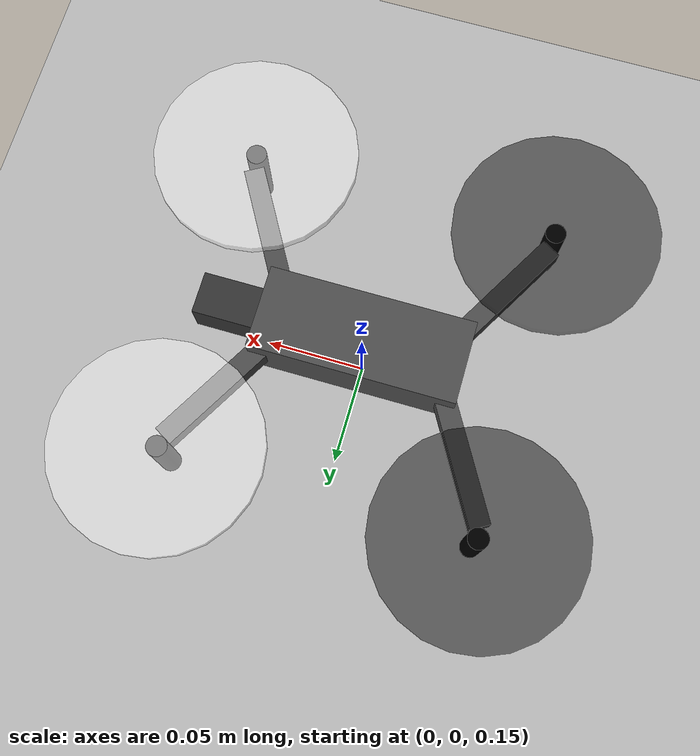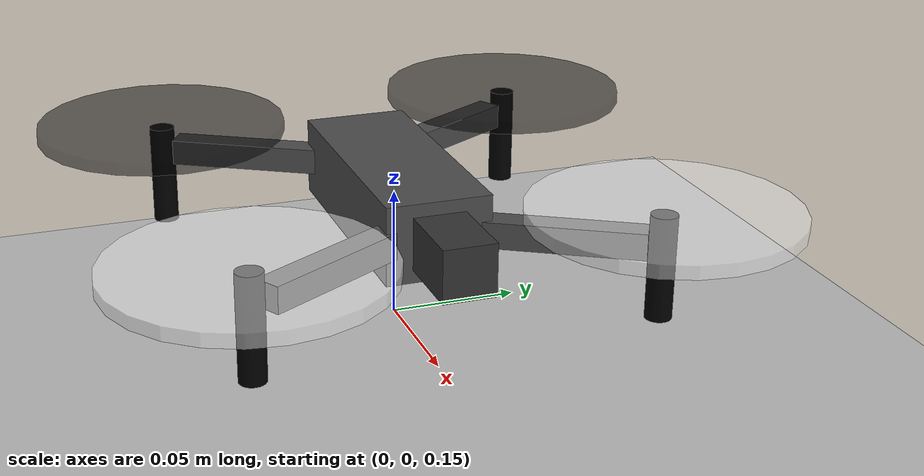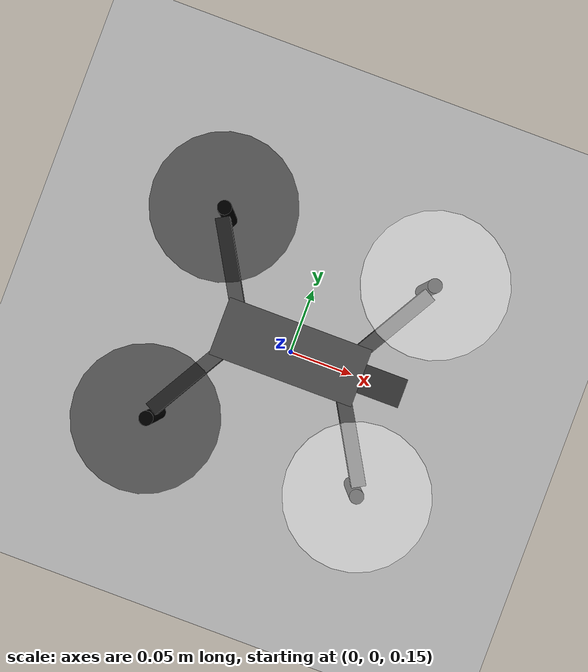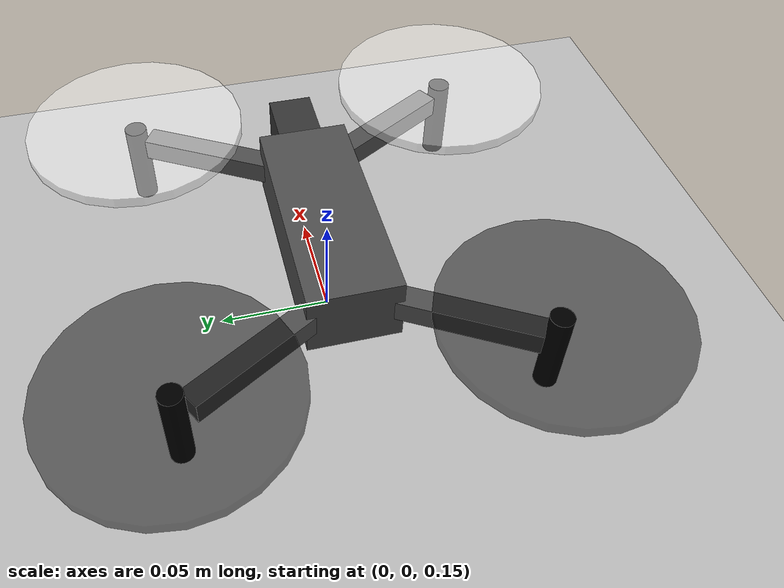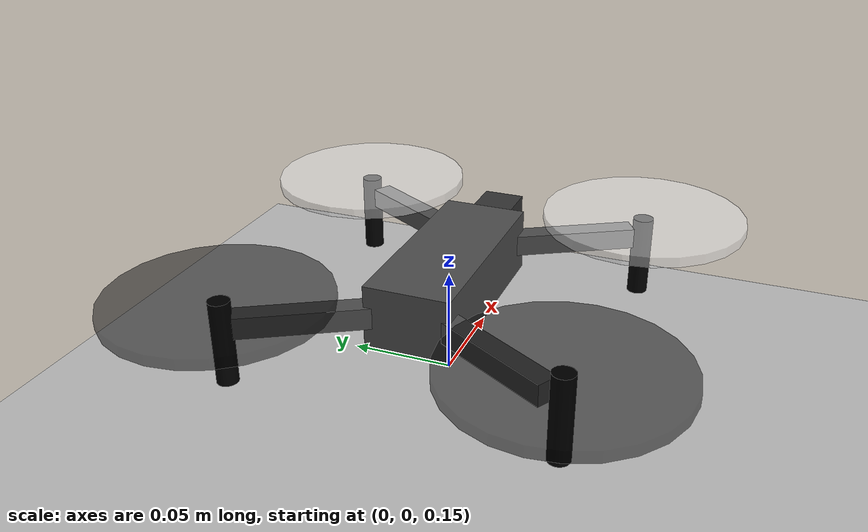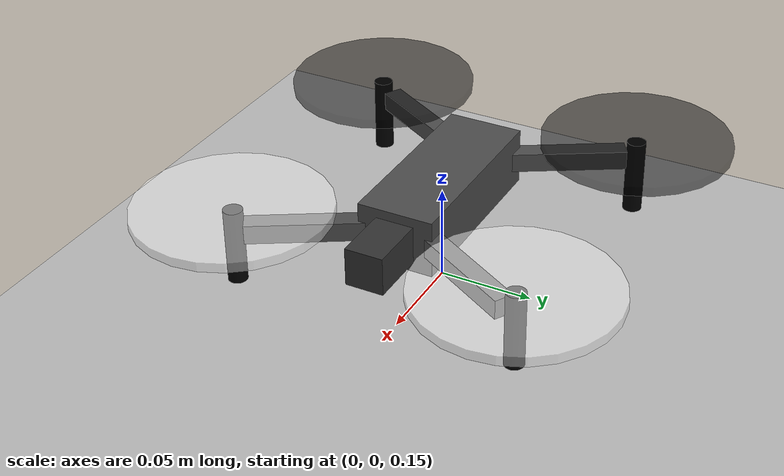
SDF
<?xml version="1.0"?>
<sdf version="1.5">
  <world name="default">

    <!-- A global light source -->
    <scene>
      <ambient>0.5 0.5 0.5 1.0</ambient>
      <shadows>true</shadows>
    </scene>

    <include>
      <uri>model://sun</uri>
    </include>

    <!-- A ground plane -->
    <include>
      <uri>model://ground_plane</uri>
    </include>

    <!-- Coordinates -->
    <spherical_coordinates>
      <surface_model>EARTH_WGS84</surface_model>
      <latitude_deg>0</latitude_deg>
      <longitude_deg>0</longitude_deg>
      <elevation>0</elevation>
      <heading_deg>0</heading_deg>
    </spherical_coordinates>

    <!-- Camera -->
    <gui fullscreen='0'>
      <camera name='user_camera'>
        <pose>7.8971 -5.86361 6.86576 0 0.507643 2.3202</pose>
        <view_controller>orbit</view_controller>
        <projection_type>perspective</projection_type>
      </camera>
    </gui>

    <!-- Floor -->
    <include>
      <name>floor</name>
      <uri>model://floor</uri>
      <pose>0 0 0.05 0 0 0</pose>
    </include>

    <!-- UAV -->
    <include>
      <name>drone</name>
      <uri>model://drone</uri>
      <pose>0 0 0.2 0 0 0</pose>
    </include>

  </world>
</sdf>

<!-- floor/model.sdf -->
<sdf version="1.5">

  <model name='floor'>
    <static>true</static>
    <link name='link'>
      <collision name='collisionsuelo'>
        <geometry>
          <box>
            <size>10 10 0.1</size>
          </box>
        </geometry>

        <surface>
          <friction>
            <ode>
              <mu>100.0</mu>
              <mu2>50.0</mu2>
              <slip1>0.0</slip1>
              <slip2>0.0</slip2>
            </ode>
          </friction>
        </surface>

      </collision>

      <visual name='visualsuelo'>
        <geometry>
          <box>
            <size>10 10 0.1</size>
          </box>
        </geometry>
        <material>
          <script>

            <uri>model://DC/floor/scripts</uri>
            <uri>model://DC/floor/materials</uri>
            <name>floorMat/Diffuse</name>
          </script>
        </material>
      </visual>
      <self_collide>0</self_collide>
      <kinematic>0</kinematic>
      <gravity>1</gravity>
    </link>
  </model>

</sdf>

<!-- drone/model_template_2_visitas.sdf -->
<sdf version='1.5'>
    <model name='drone_%i'>
        <name>abejorro</name>
        <pose>%f %f %f 0 0 0</pose>
        <plugin name='DroneControl' filename='libDroneControl.so'>
            <id>%i</id>
        </plugin>
        <static>false</static>
        <link name='dronelink'> <!-- Rotores en distribucion cuadrada situados a 25 cms del centro de gravedad -->
            <visual name='fuselaje'>
                <pose>0 0 0 0 0 0</pose>
                <geometry>
                    <box>
                        <size>0.10 0.04 0.03</size>
                    </box>
                </geometry>
                <material>
                    <ambient>0.3 0.3 0.3 1</ambient>
                    <diffuse>0.3 0.3 0.3 1</diffuse>
                </material>
            </visual>
            <collision name='fuselaje'>
                <pose>0 0 0 0 0 0</pose>
                <geometry>
                    <box>
                        <size>0.10 0.04 0.03</size>
                    </box>
                </geometry>
                <surface>
                    <friction>
                        <ode>
                            <mu>0.1</mu>
                            <mu2>0.2</mu2>
                            <slip1>1.0</slip1>
                            <slip2>1.0</slip2>
                        </ode>
                    </friction>
                </surface>
            </collision>
            <visual name='camara'>
                <pose>0.065 0 0 0 0 0</pose>
                <geometry>
                    <box>
                        <size>0.03 0.02 0.02</size>
                    </box>
                </geometry>
                <material>
                    <ambient>0.2 0.2 0.2 1</ambient>
                    <diffuse>0.2 0.2 0.2 1</diffuse>
                </material>
            </visual>
            <collision name='camara'>
                <pose>0.065 0 0 0 0 0</pose>
                <geometry>
                    <box>
                        <size>0.03 0.02 0.02</size>
                    </box>
                </geometry>
                <surface>
                    <friction>
                        <ode>
                            <mu>0.1</mu>
                            <mu2>0.2</mu2>
                            <slip1>1.0</slip1>
                            <slip2>1.0</slip2>
                        </ode>
                    </friction>
                </surface>
            </collision>
            <sensor name='view_camera' type='camera'>
                <plugin name='camera_controller_2' filename='libgazebo_ros_camera.so'>
                    <alwaysOn>true</alwaysOn>
                    <updateRate>0.0</updateRate>
                    <cameraName>view_camera</cameraName>
                    <robotNamespace>drone/%i</robotNamespace>
                </plugin>
                <pose>-0.3 0 0.2 0 0.3 0</pose>
                <camera name='view_camera'>
                    <horizontal_fov>1.57</horizontal_fov>
                    <image>
                        <width>480</width>
                        <height>360</height>
                    </image>
                    <clip>
                        <near>0.01</near>
                        <far>30</far>
                    </clip>
                </camera>
                <always_on>1</always_on>
                <update_rate>24</update_rate>
                <visualize>0</visualize>
            </sensor>
            <sensor name='onboard_camera_sensor' type='camera'>
                <plugin name='camera_controller' filename='libgazebo_ros_camera.so'>
                    <alwaysOn>true</alwaysOn>
                    <updateRate>0.0</updateRate>
                    <cameraName>onboard_camera</cameraName>
                    <robotNamespace>drone/%i</robotNamespace>
                </plugin>
                <pose>0.08 0 0 0 0</pose>
                <camera name='onboard_camera_'>
                    <horizontal_fov>1.57</horizontal_fov>
                    <image>
                        <width>320</width>
                        <height>240</height>
                    </image>
                    <clip>
                        <near>0.01</near>
                        <far>20</far>
                    </clip>
                </camera>
                <always_on>1</always_on>
                <update_rate>10</update_rate>
                <visualize>0</visualize>
            </sensor>
            <visual name='brazo_NE'>
                <pose>0.0550 -0.0346 0 0 0 -1.0472</pose>
                <geometry>
                    <box>
                        <size>0.08 .01 .01</size>
                    </box>
                </geometry>
                <material>
                    <ambient>0.3 0.3 0.3 1</ambient>
                    <diffuse>0.3 0.3 0.3 1</diffuse>
                </material>
            </visual>
            <collision name='brazo_NE'>
                <pose>0.0550 -0.0346 0 0 0 -1.0472</pose>
                <geometry>
                    <box>
                        <size>0.08 .01 .01</size>
                    </box>
                </geometry>
                <surface>
                    <friction>
                        <ode>
                            <mu>0.1</mu>
                            <mu2>0.2</mu2>
                            <slip1>1.0</slip1>
                            <slip2>1.0</slip2>
                        </ode>
                    </friction>
                </surface>
            </collision>
            <visual name='motor_NE'>
                <pose>0.0750 -0.0750 -0.01 0 0 0</pose>
                <geometry>
                    <cylinder>
                        <radius>.005</radius>
                        <length>.04</length>
                    </cylinder>
                </geometry>
                <material>
                    <ambient>0 0 0 1</ambient> <!--color Red Green Blue Alpha [0-1] -->
                    <diffuse>0 0 0 1</diffuse>
                </material>
            </visual>
            <collision name='motor_NE'>
                <pose>0.0750 -0.0750 -0.01 0 0 0</pose>
                <geometry>
                    <cylinder>
                        <radius>.005</radius>
                        <length>.04</length>
                    </cylinder>
                </geometry>
                <surface>
                    <friction>
                        <ode>
                            <mu>100.0</mu>
                            <mu2>50.0</mu2>
                            <slip1>0.0</slip1>
                            <slip2>0.0</slip2>
                        </ode>
                    </friction>
                </surface>
            </collision>
            <visual name='rotor_NE'>
                <pose>0.0750 -0.0750 0.01 0 0 0</pose>
                <geometry>
                    <cylinder>
                        <radius>0.05</radius>
                        <length>.005</length>
                    </cylinder>
                </geometry>
                <material>
                    <ambient>1 1 1 0.5</ambient> <!--color Red Green Blue Alpha [0-1] -->
                    <diffuse>1 1 1 0.5</diffuse>
                </material>
            </visual>
            <collision name='rotor_NE'>
                <pose>0.0750 -0.0750 0.01 0 0 0</pose>
                <geometry>
                    <cylinder>
                        <radius>0.05</radius>
                        <length>.005</length>
                    </cylinder>
                </geometry>
                <surface>
                    <friction>
                        <ode>
                            <mu>0.1</mu>
                            <mu2>0.2</mu2>
                            <slip1>1.0</slip1>
                            <slip2>1.0</slip2>
                        </ode>
                    </friction>
                </surface>
            </collision>
            <visual name='brazo_NW'>
                <pose>0.0550 0.0346 0 0 0 1.0472</pose>
                <geometry>
                    <box>
                        <size>0.08 .01 .01</size>
                    </box>
                </geometry>
                <material>
                    <ambient>0.3 0.3 0.3 1</ambient>
                    <diffuse>0.3 0.3 0.3 1</diffuse>
                </material>
            </visual>
            <collision name='brazo_NW'>
                <pose>0.0550 0.0346 0 0 0 1.0472</pose>
                <geometry>
                    <box>
                        <size>0.08 .01 .01</size>
                    </box>
                </geometry>
                <surface>
                    <friction>
                        <ode>
                            <mu>0.1</mu>
                            <mu2>0.2</mu2>
                            <slip1>1.0</slip1>
                            <slip2>1.0</slip2>
                        </ode>
                    </friction>
                </surface>
            </collision>
            <visual name='motor_NW'>
                <pose>0.0750 0.0750 -0.01 0 0 0</pose>
                <geometry>
                    <cylinder>
                        <radius>.005</radius>
                        <length>.04</length>
                    </cylinder>
                </geometry>
                <material>
                    <ambient>0 0 0 1</ambient> <!--color Red Green Blue Alpha [0-1] -->
                    <diffuse>0 0 0 1</diffuse>
                </material>
            </visual>
            <collision name='motor_NW'>
                <pose>0.0750 0.0750 -0.01 0 0 0</pose>
                <geometry>
                    <cylinder>
                        <radius>.005</radius>
                        <length>.04</length>
                    </cylinder>
                </geometry>
                <surface>
                    <friction>
                        <ode>
                            <mu>100.0</mu>
                            <mu2>50.0</mu2>
                            <slip1>0.0</slip1>
                            <slip2>0.0</slip2>
                        </ode>
                    </friction>
                </surface>
            </collision>
            <visual name='rotor_NW'>
                <pose>0.0750 0.0750 0.01 0 0 0</pose>
                <geometry>
                    <cylinder>
                        <radius>0.05</radius>
                        <length>.005</length>
                    </cylinder>
                </geometry>
                <material>
                    <ambient>1 1 1 0.5</ambient> <!--color Red Green Blue Alpha [0-1] -->
                    <diffuse>1 1 1 0.5</diffuse>
                </material>
            </visual>
            <collision name='rotor_NW'>
                <pose>0.0750 0.0750 0.01 0 0 0</pose>
                <geometry>
                    <cylinder>
                        <radius>0.05</radius>
                        <length>.005</length>
                    </cylinder>
                </geometry>
                <surface>
                    <friction>
                        <ode>
                            <mu>0.1</mu>
                            <mu2>0.2</mu2>
                            <slip1>1.0</slip1>
                            <slip2>1.0</slip2>
                        </ode>
                    </friction>
                </surface>
            </collision>
            <visual name='brazo_SE'>
                <pose>-0.0550 -0.0346 0 0 0 1.0472</pose>
                <geometry>
                    <box>
                        <size>0.08 .01 .01</size>
                    </box>
                </geometry>
                <material>
                    <ambient>0.3 0.3 0.3 1</ambient>
                    <diffuse>0.3 0.3 0.3 1</diffuse>
                </material>
            </visual>
            <collision name='brazo_SE'>
                <pose>-0.0550 -0.0346 0 0 0 1.0472</pose>
                <geometry>
                    <box>
                        <size>0.08 .01 .01</size>
                    </box>
                </geometry>
                <surface>
                    <friction>
                        <ode>
                            <mu>0.1</mu>
                            <mu2>0.2</mu2>
                            <slip1>1.0</slip1>
                            <slip2>1.0</slip2>
                        </ode>
                    </friction>
                </surface>
            </collision>
            <visual name='motor_SE'>
                <pose>-0.0750 -0.0750 -0.01 0 0 0</pose>
                <geometry>
                    <cylinder>
                        <radius>.005</radius>
                        <length>.04</length>
                    </cylinder>
                </geometry>
                <material>
                    <ambient>0 0 0 1</ambient> <!--color Red Green Blue Alpha [0-1] -->
                    <diffuse>0 0 0 1</diffuse>
                </material>
            </visual>
            <collision name='motor_SE'>
                <pose>-0.0750 -0.0750 -0.01 0 0 0</pose>
                <geometry>
                    <cylinder>
                        <radius>.005</radius>
                        <length>.04</length>
                    </cylinder>
                </geometry>
                <surface>
                    <friction>
                        <ode>
                            <mu>100.0</mu>
                            <mu2>50.0</mu2>
                            <slip1>0.0</slip1>
                            <slip2>0.0</slip2>
                        </ode>
                    </friction>
                </surface>
            </collision>
            <visual name='rotor_SE'>
                <pose>-0.0750 -0.0750 0.01 0 0 0</pose>
                <geometry>
                    <cylinder>
                        <radius>0.05</radius>
                        <length>.005</length>
                    </cylinder>
                </geometry>
                <material>
                    <ambient>0 0 0 0.5</ambient> <!--color Red Green Blue Alpha [0-1] -->
                    <diffuse>0 0 0 0.5</diffuse>
                </material>
            </visual>
            <collision name='rotor_SE'>
                <pose>-0.0750 -0.0750 0.01 0 0 0</pose>
                <geometry>
                    <cylinder>
                        <radius>0.05</radius>
                        <length>.005</length>
                    </cylinder>
                </geometry>
                <surface>
                    <friction>
                        <ode>
                            <mu>0.1</mu>
                            <mu2>0.2</mu2>
                            <slip1>1.0</slip1>
                            <slip2>1.0</slip2>
                        </ode>
                    </friction>
                </surface>
            </collision>
            <visual name='brazo_SW'>
                <pose>-0.0550 0.0346 0 0 0 -1.0472</pose>
                <geometry>
                    <box>
                        <size>0.08 .01 .01</size>
                    </box>
                </geometry>
                <material>
                    <ambient>0.3 0.3 0.3 1</ambient>
                    <diffuse>0.3 0.3 0.3 1</diffuse>
                </material>
            </visual>
            <collision name='brazo_SW'>
                <pose>-0.0550 0.0346 0 0 0 -1.0472</pose>
                <geometry>
                    <box>
                        <size>0.08 .01 .01</size>
                    </box>
                </geometry>
                <surface>
                    <friction>
                        <ode>
                            <mu>0.1</mu>
                            <mu2>0.2</mu2>
                            <slip1>1.0</slip1>
                            <slip2>1.0</slip2>
                        </ode>
                    </friction>
                </surface>
            </collision>
            <visual name='motor_SW'>
                <pose>-0.0750 0.0750 -0.01 0 0 0</pose>
                <geometry>
                    <cylinder>
                        <radius>.005</radius>
                        <length>.04</length>
                    </cylinder>
                </geometry>
                <material>
                    <ambient>0 0 0 1</ambient> <!--color Red Green Blue Alpha [0-1] -->
                    <diffuse>0 0 0 1</diffuse>
                </material>
            </visual>
            <collision name='motor_SW'>
                <pose>-0.0750 0.0750 -0.01 0 0 0</pose>
                <geometry>
                    <cylinder>
                        <radius>.005</radius>
                        <length>.04</length>
                    </cylinder>
                </geometry>
                <surface>
                    <friction>
                        <ode>
                            <mu>100.0</mu>
                            <mu2>50.0</mu2>
                            <slip1>0.0</slip1>
                            <slip2>0.0</slip2>
                        </ode>
                    </friction>
                </surface>
            </collision>
            <visual name='rotor_SW'>
                <pose>-0.0750 0.0750 0.01 0 0 0</pose>
                <geometry>
                    <cylinder>
                        <radius>0.05</radius>
                        <length>.005</length>
                    </cylinder>
                </geometry>
                <material>
                    <ambient>0 0 0 0.5</ambient> <!--color Red Green Blue Alpha [0-1] -->
                    <diffuse>0 0 0 0.5</diffuse>
                </material>
            </visual>
            <collision name='rotor_SW'>
                <pose>-0.0750 0.0750 0.01 0 0 0</pose>
                <geometry>
                    <cylinder>
                        <radius>0.05</radius>
                        <length>.005</length>
                    </cylinder>
                </geometry>
                <surface>
                    <friction>
                        <ode>
                            <mu>0.1</mu>
                            <mu2>0.2</mu2>
                            <slip1>1.0</slip1>
                            <slip2>1.0</slip2>
                        </ode>
                    </friction>
                </surface>
            </collision>
            <inertial>
                <mass>0.300</mass>
                <inertia> <!-- http//en.wikipedia.org/wiki/List_of_moments_of_inertia -->
                    <ixx>0.001022500</ixx> <!-- for a box ixx = 1/12 * mass * (y*y + z*z) -->
                    <ixy>0.0</ixy> <!-- for a box ixy = 0 -->
                    <ixz>0.0</ixz> <!-- for a box ixz = 0 -->
                    <iyy>0.001022500</iyy> <!-- for a box iyy = 1/12 * mass * (x*x + z*z) -->
                    <iyz>0.0</iyz> <!-- for a box iyz = 0 -->
                    <izz>0.002000000</izz> <!-- for a box izz = 1/12 * mass * (x*x + y*y) -->
                </inertia>
            </inertial>
        </link>
    </model>
</sdf>
